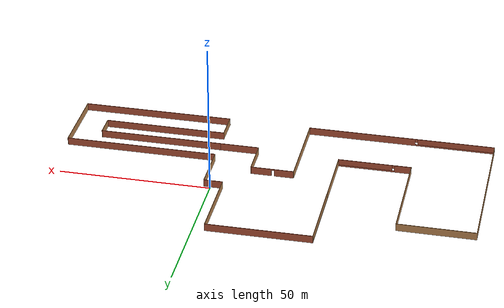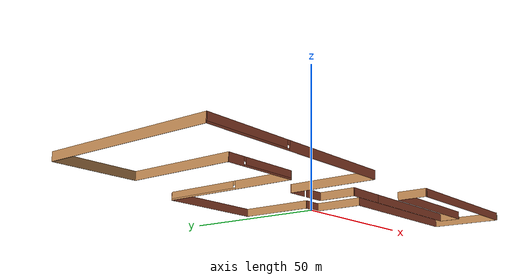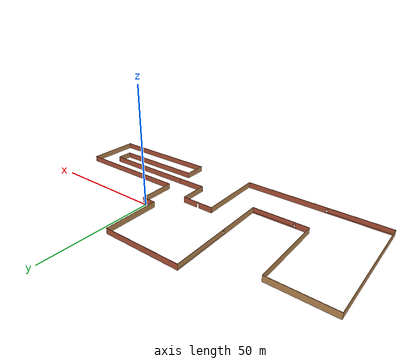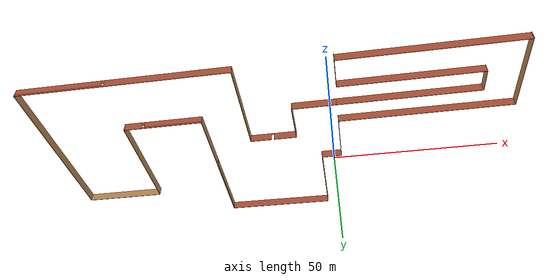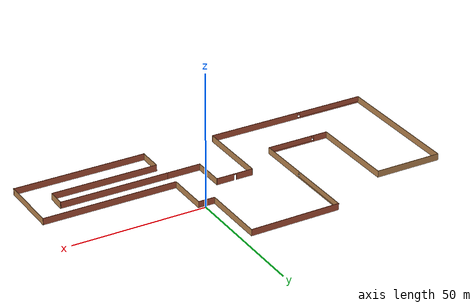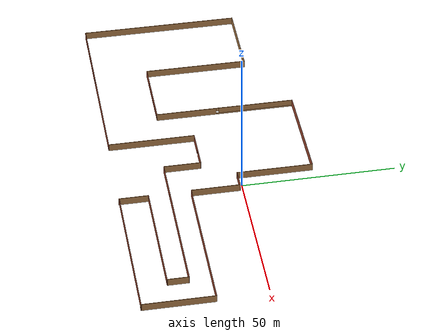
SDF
<?xml version='1.0'?>
<sdf version='1.6'>
  <model name='singlefloor'>
    <pose frame=''>-17.175 -8.20607 0 0 -0 0</pose>
    <link name='Wall_0'>
      <collision name='Wall_0_Collision'>
        <geometry>
          <box>
            <size>6.25 0.15 2.5</size>
          </box>
        </geometry>
        <pose frame=''>0 0 1.25 0 -0 0</pose>
      </collision>
      <visual name='Wall_0_Visual'>
        <pose frame=''>0 0 1.25 0 -0 0</pose>
        <geometry>
          <box>
            <size>6.25 0.15 2.5</size>
          </box>
        </geometry>
        <material>
          <script>
            <uri>file://media/materials/scripts/gazebo.material</uri>
            <name>Gazebo/Bricks</name>
          </script>
          <ambient>0.921569 0.807843 0.615686 1</ambient>
        </material>
        <meta>
          <layer>0</layer>
        </meta>
      </visual>
      <pose frame=''>16.3992 7.27037 0 0 -0 0</pose>
    </link>
    <link name='Wall_1'>
      <collision name='Wall_1_Collision'>
        <geometry>
          <box>
            <size>16 0.15 2.5</size>
          </box>
        </geometry>
        <pose frame=''>0 0 1.25 0 -0 0</pose>
      </collision>
      <visual name='Wall_1_Visual'>
        <pose frame=''>0 0 1.25 0 -0 0</pose>
        <geometry>
          <box>
            <size>16 0.15 2.5</size>
          </box>
        </geometry>
        <material>
          <script>
            <uri>file://media/materials/scripts/gazebo.material</uri>
            <name>Gazebo/Wood</name>
          </script>
          <ambient>0.921569 0.807843 0.615686 1</ambient>
        </material>
        <meta>
          <layer>0</layer>
        </meta>
      </visual>
      <pose frame=''>19.4621 -0.658928 0 0 0 -1.56917</pose>
    </link>
    <link name='Wall_10'>
      <collision name='Wall_10_Collision'>
        <geometry>
          <box>
            <size>12.25 0.15 2.5</size>
          </box>
        </geometry>
        <pose frame=''>0 0 1.25 0 -0 0</pose>
      </collision>
      <visual name='Wall_10_Visual'>
        <pose frame=''>0 0 1.25 0 -0 0</pose>
        <geometry>
          <box>
            <size>12.25 0.15 2.5</size>
          </box>
        </geometry>
        <material>
          <script>
            <uri>file://media/materials/scripts/gazebo.material</uri>
            <name>Gazebo/Wood</name>
          </script>
          <ambient>0.921569 0.807843 0.615686 1</ambient>
        </material>
        <meta>
          <layer>0</layer>
        </meta>
      </visual>
      <pose frame=''>6.375 -9.43393 0 0 -0 1.5708</pose>
    </link>
    <link name='Wall_11'>
      <pose frame=''>-0.674999 -3.38393 0 0 -0 3.14159</pose>
      <visual name='Wall_11_Visual_0'>
        <pose frame=''>-3.67697 0 1.25 0 -0 0</pose>
        <geometry>
          <box>
            <size>6.89605 0.15 2.5</size>
          </box>
        </geometry>
        <material>
          <script>
            <uri>file://media/materials/scripts/gazebo.material</uri>
            <name>Gazebo/Bricks</name>
          </script>
          <ambient>0.921569 0.807843 0.615686 1</ambient>
        </material>
        <meta>
          <layer>0</layer>
        </meta>
      </visual>
      <collision name='Wall_11_Collision_0'>
        <geometry>
          <box>
            <size>6.89605 0.15 2.5</size>
          </box>
        </geometry>
        <pose frame=''>-3.67697 0 1.25 0 -0 0</pose>
      </collision>
      <visual name='Wall_11_Visual_1'>
        <pose frame=''>3.89803 0 1.25 0 -0 0</pose>
        <geometry>
          <box>
            <size>6.45395 0.15 2.5</size>
          </box>
        </geometry>
        <material>
          <script>
            <uri>file://media/materials/scripts/gazebo.material</uri>
            <name>Gazebo/Bricks</name>
          </script>
          <ambient>0.921569 0.807843 0.615686 1</ambient>
        </material>
        <meta>
          <layer>0</layer>
        </meta>
      </visual>
      <collision name='Wall_11_Collision_1'>
        <geometry>
          <box>
            <size>6.45395 0.15 2.5</size>
          </box>
        </geometry>
        <pose frame=''>3.89803 0 1.25 0 -0 0</pose>
      </collision>
      <visual name='Wall_11_Visual_2'>
        <pose frame=''>0.221052 0 2.25 0 -0 0</pose>
        <geometry>
          <box>
            <size>0.9 0.15 0.5</size>
          </box>
        </geometry>
        <material>
          <script>
            <uri>file://media/materials/scripts/gazebo.material</uri>
            <name>Gazebo/Bricks</name>
          </script>
          <ambient>0.921569 0.807843 0.615686 1</ambient>
        </material>
        <meta>
          <layer>0</layer>
        </meta>
      </visual>
      <collision name='Wall_11_Collision_2'>
        <geometry>
          <box>
            <size>0.9 0.15 0.5</size>
          </box>
        </geometry>
        <pose frame=''>0.221052 0 2.25 0 -0 0</pose>
      </collision>
    </link>
    <link name='Wall_12'>
      <collision name='Wall_12_Collision'>
        <geometry>
          <box>
            <size>28.25 0.15 2.5</size>
          </box>
        </geometry>
        <pose frame=''>0 0 1.25 0 -0 0</pose>
      </collision>
      <visual name='Wall_12_Visual'>
        <pose frame=''>0 0 1.25 0 -0 0</pose>
        <geometry>
          <box>
            <size>28.25 0.15 2.5</size>
          </box>
        </geometry>
        <material>
          <script>
            <uri>file://media/materials/scripts/gazebo.material</uri>
            <name>Gazebo/Wood</name>
          </script>
          <ambient>0.921569 0.807843 0.615686 1</ambient>
        </material>
        <meta>
          <layer>0</layer>
        </meta>
      </visual>
      <pose frame=''>-7.725 -17.4339 0 0 0 -1.5708</pose>
    </link>
    <link name='Wall_13'>
      <pose frame=''>-38.65 -31.4839 0 0 -0 3.14159</pose>
      <visual name='Wall_13_Visual_0'>
        <pose frame=''>-13.1366 0 1.25 0 -0 0</pose>
        <geometry>
          <box>
            <size>35.7269 0.15 2.5</size>
          </box>
        </geometry>
        <material>
          <script>
            <uri>file://media/materials/scripts/gazebo.material</uri>
            <name>Gazebo/Bricks</name>
          </script>
          <ambient>0.921569 0.807843 0.615686 1</ambient>
        </material>
        <meta>
          <layer>0</layer>
        </meta>
      </visual>
      <collision name='Wall_13_Collision_0'>
        <geometry>
          <box>
            <size>35.7269 0.15 2.5</size>
          </box>
        </geometry>
        <pose frame=''>-13.1366 0 1.25 0 -0 0</pose>
      </collision>
      <visual name='Wall_13_Visual_1'>
        <pose frame=''>17.8634 0 0.25 0 -0 0</pose>
        <geometry>
          <box>
            <size>26.2731 0.15 0.5</size>
          </box>
        </geometry>
        <material>
          <script>
            <uri>file://media/materials/scripts/gazebo.material</uri>
            <name>Gazebo/Bricks</name>
          </script>
          <ambient>0.921569 0.807843 0.615686 1</ambient>
        </material>
        <meta>
          <layer>0</layer>
        </meta>
      </visual>
      <collision name='Wall_13_Collision_1'>
        <geometry>
          <box>
            <size>26.2731 0.15 0.5</size>
          </box>
        </geometry>
        <pose frame=''>17.8634 0 0.25 0 -0 0</pose>
      </collision>
      <visual name='Wall_13_Visual_2'>
        <pose frame=''>18.2634 0 1.5 0 -0 0</pose>
        <geometry>
          <box>
            <size>25.4731 0.15 2</size>
          </box>
        </geometry>
        <material>
          <script>
            <uri>file://media/materials/scripts/gazebo.material</uri>
            <name>Gazebo/Bricks</name>
          </script>
          <ambient>0.921569 0.807843 0.615686 1</ambient>
        </material>
        <meta>
          <layer>0</layer>
        </meta>
      </visual>
      <collision name='Wall_13_Collision_2'>
        <geometry>
          <box>
            <size>25.4731 0.15 2</size>
          </box>
        </geometry>
        <pose frame=''>18.2634 0 1.5 0 -0 0</pose>
      </collision>
      <visual name='Wall_13_Visual_3'>
        <pose frame=''>5.12688 0 1.9 0 -0 0</pose>
        <geometry>
          <box>
            <size>0.8 0.15 1.2</size>
          </box>
        </geometry>
        <material>
          <script>
            <uri>file://media/materials/scripts/gazebo.material</uri>
            <name>Gazebo/Bricks</name>
          </script>
          <ambient>0.921569 0.807843 0.615686 1</ambient>
        </material>
        <meta>
          <layer>0</layer>
        </meta>
      </visual>
      <collision name='Wall_13_Collision_3'>
        <geometry>
          <box>
            <size>0.8 0.15 1.2</size>
          </box>
        </geometry>
        <pose frame=''>5.12688 0 1.9 0 -0 0</pose>
      </collision>
    </link>
    <link name='Wall_14'>
      <collision name='Wall_14_Collision'>
        <geometry>
          <box>
            <size>51.25 0.15 2.5</size>
          </box>
        </geometry>
        <pose frame=''>0 0 1.25 0 -0 0</pose>
      </collision>
      <visual name='Wall_14_Visual'>
        <pose frame=''>0 0 1.25 0 -0 0</pose>
        <geometry>
          <box>
            <size>51.25 0.15 2.5</size>
          </box>
        </geometry>
        <material>
          <script>
            <uri>file://media/materials/scripts/gazebo.material</uri>
            <name>Gazebo/Wood</name>
          </script>
          <ambient>0.921569 0.807843 0.615686 1</ambient>
        </material>
        <meta>
          <layer>0</layer>
        </meta>
      </visual>
      <pose frame=''>-69.575 -5.93393 0 0 -0 1.5708</pose>
    </link>
    <link name='Wall_15'>
      <collision name='Wall_15_Collision'>
        <geometry>
          <box>
            <size>25.25 0.15 2.5</size>
          </box>
        </geometry>
        <pose frame=''>0 0 1.25 0 -0 0</pose>
      </collision>
      <visual name='Wall_15_Visual'>
        <pose frame=''>0 0 1.25 0 -0 0</pose>
        <geometry>
          <box>
            <size>25.25 0.15 2.5</size>
          </box>
        </geometry>
        <material>
          <script>
            <uri>file://media/materials/scripts/gazebo.material</uri>
            <name>Gazebo/Wood</name>
          </script>
          <ambient>0.921569 0.807843 0.615686 1</ambient>
        </material>
        <meta>
          <layer>0</layer>
        </meta>
      </visual>
      <pose frame=''>-57.025 19.6161 0 0 -0 0</pose>
    </link>
    <link name='Wall_16'>
      <collision name='Wall_16_Collision'>
        <geometry>
          <box>
            <size>33.5 0.15 2.5</size>
          </box>
        </geometry>
        <pose frame=''>0 0 1.25 0 -0 0</pose>
      </collision>
      <visual name='Wall_16_Visual'>
        <pose frame=''>0 0 1.25 0 -0 0</pose>
        <geometry>
          <box>
            <size>33.5 0.15 2.5</size>
          </box>
        </geometry>
        <material>
          <script>
            <uri>file://media/materials/scripts/gazebo.material</uri>
            <name>Gazebo/Wood</name>
          </script>
          <ambient>0.921569 0.807843 0.615686 1</ambient>
        </material>
        <meta>
          <layer>0</layer>
        </meta>
      </visual>
      <pose frame=''>-44.475 2.94107 0 0 0 -1.5708</pose>
    </link>
    <link name='Wall_17'>
      <pose frame=''>-32.55 -13.7339 0 0 -0 0</pose>
      <visual name='Wall_17_Visual_0'>
        <pose frame=''>-9.24015 0 1.25 0 -0 0</pose>
        <geometry>
          <box>
            <size>5.5197 0.15 2.5</size>
          </box>
        </geometry>
        <material>
          <script>
            <uri>file://media/materials/scripts/gazebo.material</uri>
            <name>Gazebo/Bricks</name>
          </script>
          <ambient>0.921569 0.807843 0.615686 1</ambient>
        </material>
        <meta>
          <layer>0</layer>
        </meta>
      </visual>
      <collision name='Wall_17_Collision_0'>
        <geometry>
          <box>
            <size>5.5197 0.15 2.5</size>
          </box>
        </geometry>
        <pose frame=''>-9.24015 0 1.25 0 -0 0</pose>
      </collision>
      <visual name='Wall_17_Visual_1'>
        <pose frame=''>2.75985 0 0.25 0 -0 0</pose>
        <geometry>
          <box>
            <size>18.4803 0.15 0.5</size>
          </box>
        </geometry>
        <material>
          <script>
            <uri>file://media/materials/scripts/gazebo.material</uri>
            <name>Gazebo/Bricks</name>
          </script>
          <ambient>0.921569 0.807843 0.615686 1</ambient>
        </material>
        <meta>
          <layer>0</layer>
        </meta>
      </visual>
      <collision name='Wall_17_Collision_1'>
        <geometry>
          <box>
            <size>18.4803 0.15 0.5</size>
          </box>
        </geometry>
        <pose frame=''>2.75985 0 0.25 0 -0 0</pose>
      </collision>
      <visual name='Wall_17_Visual_2'>
        <pose frame=''>3.15985 0 1.5 0 -0 0</pose>
        <geometry>
          <box>
            <size>17.6803 0.15 2</size>
          </box>
        </geometry>
        <material>
          <script>
            <uri>file://media/materials/scripts/gazebo.material</uri>
            <name>Gazebo/Bricks</name>
          </script>
          <ambient>0.921569 0.807843 0.615686 1</ambient>
        </material>
        <meta>
          <layer>0</layer>
        </meta>
      </visual>
      <collision name='Wall_17_Collision_2'>
        <geometry>
          <box>
            <size>17.6803 0.15 2</size>
          </box>
        </geometry>
        <pose frame=''>3.15985 0 1.5 0 -0 0</pose>
      </collision>
      <visual name='Wall_17_Visual_3'>
        <pose frame=''>-6.0803 0 1.9 0 -0 0</pose>
        <geometry>
          <box>
            <size>0.8 0.15 1.2</size>
          </box>
        </geometry>
        <material>
          <script>
            <uri>file://media/materials/scripts/gazebo.material</uri>
            <name>Gazebo/Bricks</name>
          </script>
          <ambient>0.921569 0.807843 0.615686 1</ambient>
        </material>
        <meta>
          <layer>0</layer>
        </meta>
      </visual>
      <collision name='Wall_17_Collision_3'>
        <geometry>
          <box>
            <size>0.8 0.15 1.2</size>
          </box>
        </geometry>
        <pose frame=''>-6.0803 0 1.9 0 -0 0</pose>
      </collision>
    </link>
    <link name='Wall_18'>
      <pose frame=''>-20.625 8.94107 0 0 -0 1.5708</pose>
      <visual name='Wall_18_Visual_0'>
        <pose frame=''>-12.8056 0 1.25 0 -0 0</pose>
        <geometry>
          <box>
            <size>19.8888 0.15 2.5</size>
          </box>
        </geometry>
        <material>
          <script>
            <uri>file://media/materials/scripts/gazebo.material</uri>
            <name>Gazebo/Wood</name>
          </script>
          <ambient>0.921569 0.807843 0.615686 1</ambient>
        </material>
        <meta>
          <layer>0</layer>
        </meta>
      </visual>
      <collision name='Wall_18_Collision_0'>
        <geometry>
          <box>
            <size>19.8888 0.15 2.5</size>
          </box>
        </geometry>
        <pose frame=''>-12.8056 0 1.25 0 -0 0</pose>
      </collision>
      <visual name='Wall_18_Visual_1'>
        <pose frame=''>9.94438 0 0.25 0 -0 0</pose>
        <geometry>
          <box>
            <size>25.6112 0.15 0.5</size>
          </box>
        </geometry>
        <material>
          <script>
            <uri>file://media/materials/scripts/gazebo.material</uri>
            <name>Gazebo/Wood</name>
          </script>
          <ambient>0.921569 0.807843 0.615686 1</ambient>
        </material>
        <meta>
          <layer>0</layer>
        </meta>
      </visual>
      <collision name='Wall_18_Collision_1'>
        <geometry>
          <box>
            <size>25.6112 0.15 0.5</size>
          </box>
        </geometry>
        <pose frame=''>9.94438 0 0.25 0 -0 0</pose>
      </collision>
      <visual name='Wall_18_Visual_2'>
        <pose frame=''>10.3444 0 1.5 0 -0 0</pose>
        <geometry>
          <box>
            <size>24.8112 0.15 2</size>
          </box>
        </geometry>
        <material>
          <script>
            <uri>file://media/materials/scripts/gazebo.material</uri>
            <name>Gazebo/Wood</name>
          </script>
          <ambient>0.921569 0.807843 0.615686 1</ambient>
        </material>
        <meta>
          <layer>0</layer>
        </meta>
      </visual>
      <collision name='Wall_18_Collision_2'>
        <geometry>
          <box>
            <size>24.8112 0.15 2</size>
          </box>
        </geometry>
        <pose frame=''>10.3444 0 1.5 0 -0 0</pose>
      </collision>
      <visual name='Wall_18_Visual_3'>
        <pose frame=''>-2.46123 0 1.9 0 -0 0</pose>
        <geometry>
          <box>
            <size>0.8 0.15 1.2</size>
          </box>
        </geometry>
        <material>
          <script>
            <uri>file://media/materials/scripts/gazebo.material</uri>
            <name>Gazebo/Wood</name>
          </script>
          <ambient>0.921569 0.807843 0.615686 1</ambient>
        </material>
        <meta>
          <layer>0</layer>
        </meta>
      </visual>
      <collision name='Wall_18_Collision_3'>
        <geometry>
          <box>
            <size>0.8 0.15 1.2</size>
          </box>
        </geometry>
        <pose frame=''>-2.46123 0 1.9 0 -0 0</pose>
      </collision>
    </link>
    <link name='Wall_19'>
      <collision name='Wall_19_Collision'>
        <geometry>
          <box>
            <size>34.0968 0.15 2.5</size>
          </box>
        </geometry>
        <pose frame=''>0 0 1.25 0 -0 0</pose>
      </collision>
      <visual name='Wall_19_Visual'>
        <pose frame=''>0 0 1.25 0 -0 0</pose>
        <geometry>
          <box>
            <size>34.0968 0.15 2.5</size>
          </box>
        </geometry>
        <material>
          <script>
            <uri>file://media/materials/scripts/gazebo.material</uri>
            <name>Gazebo/Bricks</name>
          </script>
          <ambient>0.921569 0.807843 0.615686 1</ambient>
        </material>
        <meta>
          <layer>0</layer>
        </meta>
      </visual>
      <pose frame=''>-3.65205 31.7412 0 0 -0 0.007373</pose>
    </link>
    <link name='Wall_2'>
      <collision name='Wall_2_Collision'>
        <geometry>
          <box>
            <size>50.25 0.15 2.5</size>
          </box>
        </geometry>
        <pose frame=''>0 0 1.25 0 -0 0</pose>
      </collision>
      <visual name='Wall_2_Visual'>
        <pose frame=''>0 0 1.25 0 -0 0</pose>
        <geometry>
          <box>
            <size>50.25 0.15 2.5</size>
          </box>
        </geometry>
        <material>
          <script>
            <uri>file://media/materials/scripts/gazebo.material</uri>
            <name>Gazebo/Bricks</name>
          </script>
          <ambient>0.921569 0.807843 0.615686 1</ambient>
        </material>
        <meta>
          <layer>0</layer>
        </meta>
      </visual>
      <pose frame=''>44.525 -8.58393 0 0 -0 0</pose>
    </link>
    <link name='Wall_20'>
      <collision name='Wall_20_Collision'>
        <geometry>
          <box>
            <size>24.75 0.15 2.5</size>
          </box>
        </geometry>
        <pose frame=''>0 0 1.25 0 -0 0</pose>
      </collision>
      <visual name='Wall_20_Visual'>
        <pose frame=''>0 0 1.25 0 -0 0</pose>
        <geometry>
          <box>
            <size>24.75 0.15 2.5</size>
          </box>
        </geometry>
        <material>
          <script>
            <uri>file://media/materials/scripts/gazebo.material</uri>
            <name>Gazebo/Wood</name>
          </script>
          <ambient>0.921569 0.807843 0.615686 1</ambient>
        </material>
        <meta>
          <layer>0</layer>
        </meta>
      </visual>
      <pose frame=''>13.3295 19.5664 0 0 0 -1.5708</pose>
    </link>
    <link name='Wall_3'>
      <collision name='Wall_3_Collision'>
        <geometry>
          <box>
            <size>23.433 0.15 2.5</size>
          </box>
        </geometry>
        <pose frame=''>0 0 1.25 0 -0 0</pose>
      </collision>
      <visual name='Wall_3_Visual'>
        <pose frame=''>0 0 1.25 0 -0 0</pose>
        <geometry>
          <box>
            <size>23.433 0.15 2.5</size>
          </box>
        </geometry>
        <material>
          <script>
            <uri>file://media/materials/scripts/gazebo.material</uri>
            <name>Gazebo/Wood</name>
          </script>
          <ambient>0.921569 0.807843 0.615686 1</ambient>
        </material>
        <meta>
          <layer>0</layer>
        </meta>
      </visual>
      <pose frame=''>69.575 -20.2254 0 0 0 -1.5708</pose>
    </link>
    <link name='Wall_4'>
      <collision name='Wall_4_Collision'>
        <geometry>
          <box>
            <size>50 0.15 2.5</size>
          </box>
        </geometry>
        <pose frame=''>0 0 1.25 0 -0 0</pose>
      </collision>
      <visual name='Wall_4_Visual'>
        <pose frame=''>0 0 1.25 0 -0 0</pose>
        <geometry>
          <box>
            <size>50 0.15 2.5</size>
          </box>
        </geometry>
        <material>
          <script>
            <uri>file://media/materials/scripts/gazebo.material</uri>
            <name>Gazebo/Bricks</name>
          </script>
          <ambient>0.921569 0.807843 0.615686 1</ambient>
        </material>
        <meta>
          <layer>0</layer>
        </meta>
      </visual>
      <pose frame=''>44.65 -31.6798 0 0 -0 3.14159</pose>
    </link>
    <link name='Wall_5'>
      <collision name='Wall_5_Collision'>
        <geometry>
          <box>
            <size>9.68298 0.15 2.5</size>
          </box>
        </geometry>
        <pose frame=''>0 0 1.25 0 -0 0</pose>
      </collision>
      <visual name='Wall_5_Visual'>
        <pose frame=''>0 0 1.25 0 -0 0</pose>
        <geometry>
          <box>
            <size>9.68298 0.15 2.5</size>
          </box>
        </geometry>
        <material>
          <script>
            <uri>file://media/materials/scripts/gazebo.material</uri>
            <name>Gazebo/Wood</name>
          </script>
          <ambient>0.921569 0.807843 0.615686 1</ambient>
        </material>
        <meta>
          <layer>0</layer>
        </meta>
      </visual>
      <pose frame=''>19.725 -27.1004 0 0 -0 1.5708</pose>
    </link>
    <link name='Wall_6'>
      <collision name='Wall_6_Collision'>
        <geometry>
          <box>
            <size>40.25 0.15 2.5</size>
          </box>
        </geometry>
        <pose frame=''>0 0 1.25 0 -0 0</pose>
      </collision>
      <visual name='Wall_6_Visual'>
        <pose frame=''>0 0 1.25 0 -0 0</pose>
        <geometry>
          <box>
            <size>40.25 0.15 2.5</size>
          </box>
        </geometry>
        <material>
          <script>
            <uri>file://media/materials/scripts/gazebo.material</uri>
            <name>Gazebo/Bricks</name>
          </script>
          <ambient>0.921569 0.807843 0.615686 1</ambient>
        </material>
        <meta>
          <layer>0</layer>
        </meta>
      </visual>
      <pose frame=''>39.775 -22.3339 0 0 -0 0</pose>
    </link>
    <link name='Wall_7'>
      <collision name='Wall_7_Collision'>
        <geometry>
          <box>
            <size>7 0.15 2.5</size>
          </box>
        </geometry>
        <pose frame=''>0 0 1.25 0 -0 0</pose>
      </collision>
      <visual name='Wall_7_Visual'>
        <pose frame=''>0 0 1.25 0 -0 0</pose>
        <geometry>
          <box>
            <size>7 0.15 2.5</size>
          </box>
        </geometry>
        <material>
          <script>
            <uri>file://media/materials/scripts/gazebo.material</uri>
            <name>Gazebo/Wood</name>
          </script>
          <ambient>0.921569 0.807843 0.615686 1</ambient>
        </material>
        <meta>
          <layer>0</layer>
        </meta>
      </visual>
      <pose frame=''>59.825 -18.9089 0 0 -0 1.5708</pose>
    </link>
    <link name='Wall_8'>
      <collision name='Wall_8_Collision'>
        <geometry>
          <box>
            <size>40.75 0.15 2.5</size>
          </box>
        </geometry>
        <pose frame=''>0 0 1.25 0 -0 0</pose>
      </collision>
      <visual name='Wall_8_Visual'>
        <pose frame=''>0 0 1.25 0 -0 0</pose>
        <geometry>
          <box>
            <size>40.75 0.15 2.5</size>
          </box>
        </geometry>
        <material>
          <script>
            <uri>file://media/materials/scripts/gazebo.material</uri>
            <name>Gazebo/Bricks</name>
          </script>
          <ambient>0.921569 0.807843 0.615686 1</ambient>
        </material>
        <meta>
          <layer>0</layer>
        </meta>
      </visual>
      <pose frame=''>39.525 -15.4839 0 0 -0 3.14159</pose>
    </link>
    <link name='Wall_9'>
      <collision name='Wall_9_Collision'>
        <geometry>
          <box>
            <size>13 0.15 2.5</size>
          </box>
        </geometry>
        <pose frame=''>0 0 1.25 0 -0 0</pose>
      </collision>
      <visual name='Wall_9_Visual'>
        <pose frame=''>0 0 1.25 0 -0 0</pose>
        <geometry>
          <box>
            <size>13 0.15 2.5</size>
          </box>
        </geometry>
        <material>
          <script>
            <uri>file://media/materials/scripts/gazebo.material</uri>
            <name>Gazebo/Bricks</name>
          </script>
          <ambient>0.921569 0.807843 0.615686 1</ambient>
        </material>
        <meta>
          <layer>0</layer>
        </meta>
      </visual>
      <pose frame=''>12.8 -15.4839 0 0 -0 3.14159</pose>
    </link>
    <static>1</static>
  </model>
</sdf>
